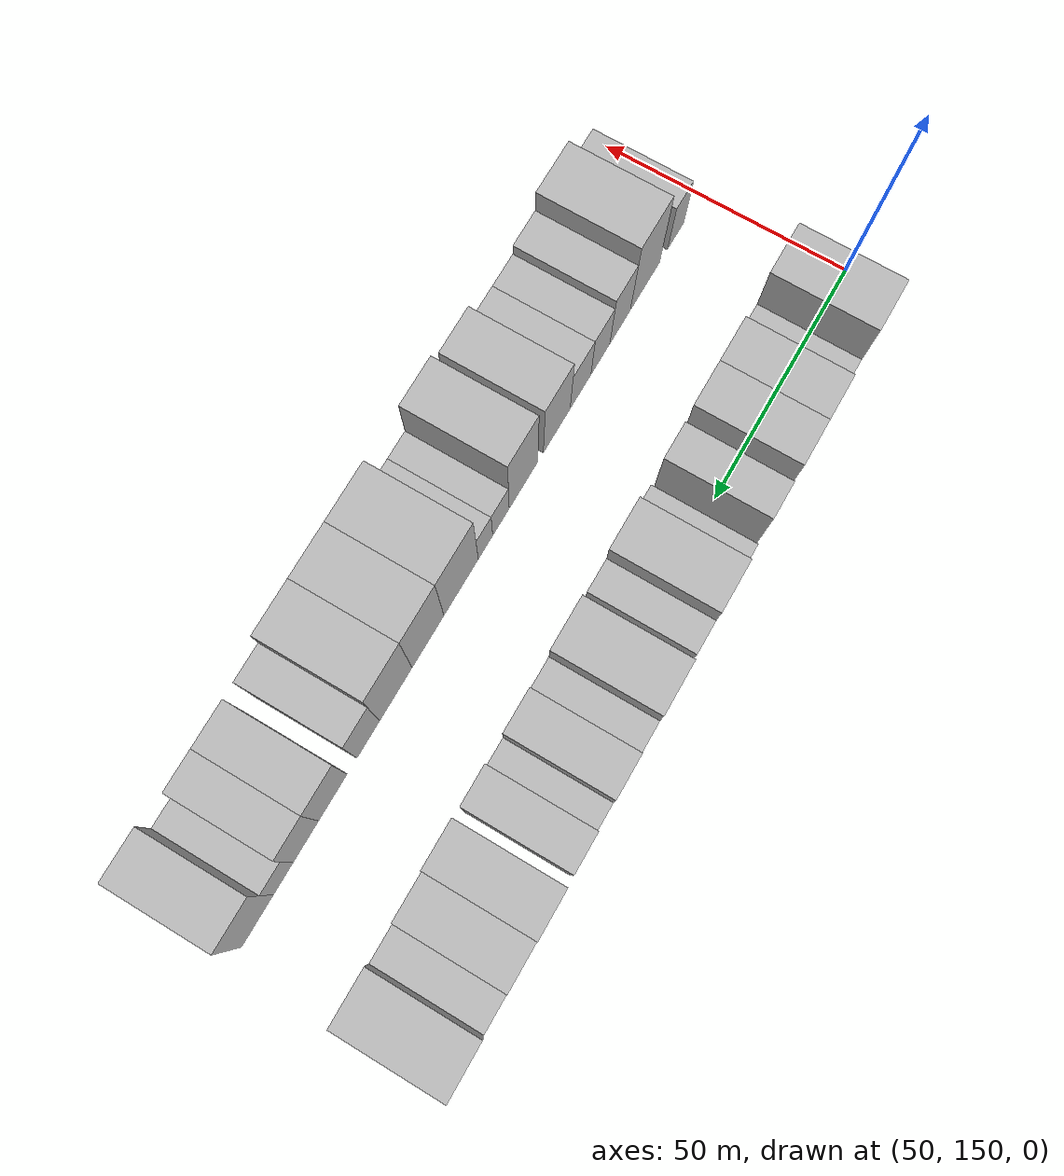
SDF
<sdf version="1.6">
 <world name="default">
  <model name="building_49">
   <static>1</static>
   <pose>50.0000 164.7333 0 0.000000 0.000000 0.000000</pose>
   <link name="link">
    <pose>0 0 12.00 0 0 0</pose>
    <collision name="collision"><geometry><box><size>20.0000 10.2480 24.0000</size></box></geometry></collision>
    <visual name="visual">
     <cast_shadows>0</cast_shadows>
     <geometry><box><size>20.0000 10.2480 24.0000</size></box></geometry>
     <material>
      <script>
       <uri>model://HANNAS_wall/materials/scripts</uri>
       <uri>model://HANNAS_wall/materials/textures</uri>
       <name>vrc/HANNAS_wall</name>
      </script>
     </material>
    </visual>
   </link>
  </model>
  <model name="building_50">
   <static>1</static>
   <pose>50.0000 172.4840 0 0.000000 0.000000 0.000000</pose>
   <link name="link">
    <pose>0 0 6.00 0 0 0</pose>
    <collision name="collision"><geometry><box><size>20.0000 5.2534 12.0000</size></box></geometry></collision>
    <visual name="visual">
     <cast_shadows>0</cast_shadows>
     <geometry><box><size>20.0000 5.2534 12.0000</size></box></geometry>
     <material>
      <script>
       <uri>model://HANNAS_wall/materials/scripts</uri>
       <uri>model://HANNAS_wall/materials/textures</uri>
       <name>vrc/HANNAS_wall</name>
      </script>
     </material>
    </visual>
   </link>
  </model>
  <model name="building_51">
   <static>1</static>
   <pose>50.0000 181.5382 0 0.000000 0.000000 0.000000</pose>
   <link name="link">
    <pose>0 0 10.50 0 0 0</pose>
    <collision name="collision"><geometry><box><size>20.0000 8.8549 21.0000</size></box></geometry></collision>
    <visual name="visual">
     <cast_shadows>0</cast_shadows>
     <geometry><box><size>20.0000 8.8549 21.0000</size></box></geometry>
     <material>
      <script>
       <uri>model://HANNAS_wall/materials/scripts</uri>
       <uri>model://HANNAS_wall/materials/textures</uri>
       <name>vrc/HANNAS_wall</name>
      </script>
     </material>
    </visual>
   </link>
  </model>
  <model name="building_52">
   <static>1</static>
   <pose>50.0000 190.4332 0 0.000000 0.000000 0.000000</pose>
   <link name="link">
    <pose>0 0 10.50 0 0 0</pose>
    <collision name="collision"><geometry><box><size>20.0000 8.9350 21.0000</size></box></geometry></collision>
    <visual name="visual">
     <cast_shadows>0</cast_shadows>
     <geometry><box><size>20.0000 8.9350 21.0000</size></box></geometry>
     <material>
      <script>
       <uri>model://HANNAS_wall/materials/scripts</uri>
       <uri>model://HANNAS_wall/materials/textures</uri>
       <name>vrc/HANNAS_wall</name>
      </script>
     </material>
    </visual>
   </link>
  </model>
  <model name="building_53">
   <static>1</static>
   <pose>50.0000 200.5397 0 0.000000 0.000000 0.000000</pose>
   <link name="link">
    <pose>0 0 9.00 0 0 0</pose>
    <collision name="collision"><geometry><box><size>20.0000 7.2780 18.0000</size></box></geometry></collision>
    <visual name="visual">
     <cast_shadows>0</cast_shadows>
     <geometry><box><size>20.0000 7.2780 18.0000</size></box></geometry>
     <material>
      <script>
       <uri>model://HANNAS_wall/materials/scripts</uri>
       <uri>model://HANNAS_wall/materials/textures</uri>
       <name>vrc/HANNAS_wall</name>
      </script>
     </material>
    </visual>
   </link>
  </model>
  <model name="building_54">
   <static>1</static>
   <pose>50.0000 209.8873 0 0.000000 0.000000 0.000000</pose>
   <link name="link">
    <pose>0 0 6.00 0 0 0</pose>
    <collision name="collision"><geometry><box><size>20.0000 5.4173 12.0000</size></box></geometry></collision>
    <visual name="visual">
     <cast_shadows>0</cast_shadows>
     <geometry><box><size>20.0000 5.4173 12.0000</size></box></geometry>
     <material>
      <script>
       <uri>model://HANNAS_wall/materials/scripts</uri>
       <uri>model://HANNAS_wall/materials/textures</uri>
       <name>vrc/HANNAS_wall</name>
      </script>
     </material>
    </visual>
   </link>
  </model>
  <model name="building_55">
   <static>1</static>
   <pose>50.0000 217.5736 0 0.000000 0.000000 0.000000</pose>
   <link name="link">
    <pose>0 0 10.50 0 0 0</pose>
    <collision name="collision"><geometry><box><size>20.0000 9.9553 21.0000</size></box></geometry></collision>
    <visual name="visual">
     <cast_shadows>0</cast_shadows>
     <geometry><box><size>20.0000 9.9553 21.0000</size></box></geometry>
     <material>
      <script>
       <uri>model://HANNAS_wall/materials/scripts</uri>
       <uri>model://HANNAS_wall/materials/textures</uri>
       <name>vrc/HANNAS_wall</name>
      </script>
     </material>
    </visual>
   </link>
  </model>
  <model name="building_56">
   <static>1</static>
   <pose>50.0000 225.7262 0 0.000000 0.000000 0.000000</pose>
   <link name="link">
    <pose>0 0 7.50 0 0 0</pose>
    <collision name="collision"><geometry><box><size>20.0000 6.3499 15.0000</size></box></geometry></collision>
    <visual name="visual">
     <cast_shadows>0</cast_shadows>
     <geometry><box><size>20.0000 6.3499 15.0000</size></box></geometry>
     <material>
      <script>
       <uri>model://HANNAS_wall/materials/scripts</uri>
       <uri>model://HANNAS_wall/materials/textures</uri>
       <name>vrc/HANNAS_wall</name>
      </script>
     </material>
    </visual>
   </link>
  </model>
  <model name="building_57">
   <static>1</static>
   <pose>50.0000 235.9621 0 0.000000 0.000000 0.000000</pose>
   <link name="link">
    <pose>0 0 10.50 0 0 0</pose>
    <collision name="collision"><geometry><box><size>20.0000 10.1217 21.0000</size></box></geometry></collision>
    <visual name="visual">
     <cast_shadows>0</cast_shadows>
     <geometry><box><size>20.0000 10.1217 21.0000</size></box></geometry>
     <material>
      <script>
       <uri>model://HANNAS_wall/materials/scripts</uri>
       <uri>model://HANNAS_wall/materials/textures</uri>
       <name>vrc/HANNAS_wall</name>
      </script>
     </material>
    </visual>
   </link>
  </model>
  <model name="building_58">
   <static>1</static>
   <pose>50.0000 244.0430 0 0.000000 0.000000 0.000000</pose>
   <link name="link">
    <pose>0 0 7.50 0 0 0</pose>
    <collision name="collision"><geometry><box><size>20.0000 6.0402 15.0000</size></box></geometry></collision>
    <visual name="visual">
     <cast_shadows>0</cast_shadows>
     <geometry><box><size>20.0000 6.0402 15.0000</size></box></geometry>
     <material>
      <script>
       <uri>model://HANNAS_wall/materials/scripts</uri>
       <uri>model://HANNAS_wall/materials/textures</uri>
       <name>vrc/HANNAS_wall</name>
      </script>
     </material>
    </visual>
   </link>
  </model>
  <model name="building_59">
   <static>1</static>
   <pose>50.0000 251.2206 0 0.000000 0.000000 0.000000</pose>
   <link name="link">
    <pose>0 0 9.00 0 0 0</pose>
    <collision name="collision"><geometry><box><size>20.0000 8.3151 18.0000</size></box></geometry></collision>
    <visual name="visual">
     <cast_shadows>0</cast_shadows>
     <geometry><box><size>20.0000 8.3151 18.0000</size></box></geometry>
     <material>
      <script>
       <uri>model://HANNAS_wall/materials/scripts</uri>
       <uri>model://HANNAS_wall/materials/textures</uri>
       <name>vrc/HANNAS_wall</name>
      </script>
     </material>
    </visual>
   </link>
  </model>
  <model name="building_60">
   <static>1</static>
   <pose>50.0000 258.0000 0 0.000000 0.000000 0.000000</pose>
   <link name="link">
    <pose>0 0 6.00 0 0 0</pose>
    <collision name="collision"><geometry><box><size>20.0000 5.2437 12.0000</size></box></geometry></collision>
    <visual name="visual">
     <cast_shadows>0</cast_shadows>
     <geometry><box><size>20.0000 5.2437 12.0000</size></box></geometry>
     <material>
      <script>
       <uri>model://HANNAS_wall/materials/scripts</uri>
       <uri>model://HANNAS_wall/materials/textures</uri>
       <name>vrc/HANNAS_wall</name>
      </script>
     </material>
    </visual>
   </link>
  </model>
  <model name="building_61">
   <static>1</static>
   <pose>50.0000 264.3909 0 0.000000 0.000000 0.000000</pose>
   <link name="link">
    <pose>0 0 9.00 0 0 0</pose>
    <collision name="collision"><geometry><box><size>20.0000 7.5382 18.0000</size></box></geometry></collision>
    <visual name="visual">
     <cast_shadows>0</cast_shadows>
     <geometry><box><size>20.0000 7.5382 18.0000</size></box></geometry>
     <material>
      <script>
       <uri>model://HANNAS_wall/materials/scripts</uri>
       <uri>model://HANNAS_wall/materials/textures</uri>
       <name>vrc/HANNAS_wall</name>
      </script>
     </material>
    </visual>
   </link>
  </model>
  <model name="building_62">
   <static>1</static>
   <pose>50.0000 274.6211 0 0.000000 0.000000 0.000000</pose>
   <link name="link">
    <pose>0 0 10.50 0 0 0</pose>
    <collision name="collision"><geometry><box><size>20.0000 8.9221 21.0000</size></box></geometry></collision>
    <visual name="visual">
     <cast_shadows>0</cast_shadows>
     <geometry><box><size>20.0000 8.9221 21.0000</size></box></geometry>
     <material>
      <script>
       <uri>model://HANNAS_wall/materials/scripts</uri>
       <uri>model://HANNAS_wall/materials/textures</uri>
       <name>vrc/HANNAS_wall</name>
      </script>
     </material>
    </visual>
   </link>
  </model>
  <model name="building_63">
   <static>1</static>
   <pose>50.0000 283.4762 0 0.000000 0.000000 0.000000</pose>
   <link name="link">
    <pose>0 0 9.00 0 0 0</pose>
    <collision name="collision"><geometry><box><size>20.0000 8.7880 18.0000</size></box></geometry></collision>
    <visual name="visual">
     <cast_shadows>0</cast_shadows>
     <geometry><box><size>20.0000 8.7880 18.0000</size></box></geometry>
     <material>
      <script>
       <uri>model://HANNAS_wall/materials/scripts</uri>
       <uri>model://HANNAS_wall/materials/textures</uri>
       <name>vrc/HANNAS_wall</name>
      </script>
     </material>
    </visual>
   </link>
  </model>
  <model name="building_64">
   <static>1</static>
   <pose>50.0000 291.2876 0 0.000000 0.000000 0.000000</pose>
   <link name="link">
    <pose>0 0 7.50 0 0 0</pose>
    <collision name="collision"><geometry><box><size>20.0000 6.8347 15.0000</size></box></geometry></collision>
    <visual name="visual">
     <cast_shadows>0</cast_shadows>
     <geometry><box><size>20.0000 6.8347 15.0000</size></box></geometry>
     <material>
      <script>
       <uri>model://HANNAS_wall/materials/scripts</uri>
       <uri>model://HANNAS_wall/materials/textures</uri>
       <name>vrc/HANNAS_wall</name>
      </script>
     </material>
    </visual>
   </link>
  </model>
  <model name="building_65">
   <static>1</static>
   <pose>50.0000 299.7510 0 0.000000 0.000000 0.000000</pose>
   <link name="link">
    <pose>0 0 10.50 0 0 0</pose>
    <collision name="collision"><geometry><box><size>20.0000 10.0922 21.0000</size></box></geometry></collision>
    <visual name="visual">
     <cast_shadows>0</cast_shadows>
     <geometry><box><size>20.0000 10.0922 21.0000</size></box></geometry>
     <material>
      <script>
       <uri>model://HANNAS_wall/materials/scripts</uri>
       <uri>model://HANNAS_wall/materials/textures</uri>
       <name>vrc/HANNAS_wall</name>
      </script>
     </material>
    </visual>
   </link>
  </model>
  <model name="building_117">
   <static>1</static>
   <pose>90.0000 159.7035 0 0.000000 0.000000 0.000000</pose>
   <link name="link">
    <pose>0 0 7.50 0 0 0</pose>
    <collision name="collision"><geometry><box><size>20.0000 6.1051 15.0000</size></box></geometry></collision>
    <visual name="visual">
     <cast_shadows>0</cast_shadows>
     <geometry><box><size>20.0000 6.1051 15.0000</size></box></geometry>
     <material>
      <script>
       <uri>model://HANNAS_wall/materials/scripts</uri>
       <uri>model://HANNAS_wall/materials/textures</uri>
       <name>vrc/HANNAS_wall</name>
      </script>
     </material>
    </visual>
   </link>
  </model>
  <model name="building_118">
   <static>1</static>
   <pose>90.0000 171.2225 0 0.000000 0.000000 0.000000</pose>
   <link name="link">
    <pose>0 0 12.00 0 0 0</pose>
    <collision name="collision"><geometry><box><size>20.0000 10.9329 24.0000</size></box></geometry></collision>
    <visual name="visual">
     <cast_shadows>0</cast_shadows>
     <geometry><box><size>20.0000 10.9329 24.0000</size></box></geometry>
     <material>
      <script>
       <uri>model://HANNAS_wall/materials/scripts</uri>
       <uri>model://HANNAS_wall/materials/textures</uri>
       <name>vrc/HANNAS_wall</name>
      </script>
     </material>
    </visual>
   </link>
  </model>
  <model name="building_119">
   <static>1</static>
   <pose>90.0000 180.4531 0 0.000000 0.000000 0.000000</pose>
   <link name="link">
    <pose>0 0 9.00 0 0 0</pose>
    <collision name="collision"><geometry><box><size>20.0000 7.5284 18.0000</size></box></geometry></collision>
    <visual name="visual">
     <cast_shadows>0</cast_shadows>
     <geometry><box><size>20.0000 7.5284 18.0000</size></box></geometry>
     <material>
      <script>
       <uri>model://HANNAS_wall/materials/scripts</uri>
       <uri>model://HANNAS_wall/materials/textures</uri>
       <name>vrc/HANNAS_wall</name>
      </script>
     </material>
    </visual>
   </link>
  </model>
  <model name="building_120">
   <static>1</static>
   <pose>90.0000 187.6363 0 0.000000 0.000000 0.000000</pose>
   <link name="link">
    <pose>0 0 7.50 0 0 0</pose>
    <collision name="collision"><geometry><box><size>20.0000 6.8379 15.0000</size></box></geometry></collision>
    <visual name="visual">
     <cast_shadows>0</cast_shadows>
     <geometry><box><size>20.0000 6.8379 15.0000</size></box></geometry>
     <material>
      <script>
       <uri>model://HANNAS_wall/materials/scripts</uri>
       <uri>model://HANNAS_wall/materials/textures</uri>
       <name>vrc/HANNAS_wall</name>
      </script>
     </material>
    </visual>
   </link>
  </model>
  <model name="building_121">
   <static>1</static>
   <pose>90.0000 194.7743 0 0.000000 0.000000 0.000000</pose>
   <link name="link">
    <pose>0 0 7.50 0 0 0</pose>
    <collision name="collision"><geometry><box><size>20.0000 7.4381 15.0000</size></box></geometry></collision>
    <visual name="visual">
     <cast_shadows>0</cast_shadows>
     <geometry><box><size>20.0000 7.4381 15.0000</size></box></geometry>
     <material>
      <script>
       <uri>model://HANNAS_wall/materials/scripts</uri>
       <uri>model://HANNAS_wall/materials/textures</uri>
       <name>vrc/HANNAS_wall</name>
      </script>
     </material>
    </visual>
   </link>
  </model>
  <model name="building_122">
   <static>1</static>
   <pose>90.0000 203.2185 0 0.000000 0.000000 0.000000</pose>
   <link name="link">
    <pose>0 0 10.50 0 0 0</pose>
    <collision name="collision"><geometry><box><size>20.0000 9.4503 21.0000</size></box></geometry></collision>
    <visual name="visual">
     <cast_shadows>0</cast_shadows>
     <geometry><box><size>20.0000 9.4503 21.0000</size></box></geometry>
     <material>
      <script>
       <uri>model://HANNAS_wall/materials/scripts</uri>
       <uri>model://HANNAS_wall/materials/textures</uri>
       <name>vrc/HANNAS_wall</name>
      </script>
     </material>
    </visual>
   </link>
  </model>
  <model name="building_123">
   <static>1</static>
   <pose>90.0000 214.8540 0 0.000000 0.000000 0.000000</pose>
   <link name="link">
    <pose>0 0 12.00 0 0 0</pose>
    <collision name="collision"><geometry><box><size>20.0000 9.8207 24.0000</size></box></geometry></collision>
    <visual name="visual">
     <cast_shadows>0</cast_shadows>
     <geometry><box><size>20.0000 9.8207 24.0000</size></box></geometry>
     <material>
      <script>
       <uri>model://HANNAS_wall/materials/scripts</uri>
       <uri>model://HANNAS_wall/materials/textures</uri>
       <name>vrc/HANNAS_wall</name>
      </script>
     </material>
    </visual>
   </link>
  </model>
  <model name="building_124">
   <static>1</static>
   <pose>90.0000 222.5661 0 0.000000 0.000000 0.000000</pose>
   <link name="link">
    <pose>0 0 6.00 0 0 0</pose>
    <collision name="collision"><geometry><box><size>20.0000 5.6034 12.0000</size></box></geometry></collision>
    <visual name="visual">
     <cast_shadows>0</cast_shadows>
     <geometry><box><size>20.0000 5.6034 12.0000</size></box></geometry>
     <material>
      <script>
       <uri>model://HANNAS_wall/materials/scripts</uri>
       <uri>model://HANNAS_wall/materials/textures</uri>
       <name>vrc/HANNAS_wall</name>
      </script>
     </material>
    </visual>
   </link>
  </model>
  <model name="building_125">
   <static>1</static>
   <pose>90.0000 227.7988 0 0.000000 0.000000 0.000000</pose>
   <link name="link">
    <pose>0 0 6.00 0 0 0</pose>
    <collision name="collision"><geometry><box><size>20.0000 4.8621 12.0000</size></box></geometry></collision>
    <visual name="visual">
     <cast_shadows>0</cast_shadows>
     <geometry><box><size>20.0000 4.8621 12.0000</size></box></geometry>
     <material>
      <script>
       <uri>model://HANNAS_wall/materials/scripts</uri>
       <uri>model://HANNAS_wall/materials/textures</uri>
       <name>vrc/HANNAS_wall</name>
      </script>
     </material>
    </visual>
   </link>
  </model>
  <model name="building_126">
   <static>1</static>
   <pose>90.0000 235.9487 0 0.000000 0.000000 0.000000</pose>
   <link name="link">
    <pose>0 0 12.00 0 0 0</pose>
    <collision name="collision"><geometry><box><size>20.0000 11.4376 24.0000</size></box></geometry></collision>
    <visual name="visual">
     <cast_shadows>0</cast_shadows>
     <geometry><box><size>20.0000 11.4376 24.0000</size></box></geometry>
     <material>
      <script>
       <uri>model://HANNAS_wall/materials/scripts</uri>
       <uri>model://HANNAS_wall/materials/textures</uri>
       <name>vrc/HANNAS_wall</name>
      </script>
     </material>
    </visual>
   </link>
  </model>
  <model name="building_127">
   <static>1</static>
   <pose>90.0000 246.8679 0 0.000000 0.000000 0.000000</pose>
   <link name="link">
    <pose>0 0 12.00 0 0 0</pose>
    <collision name="collision"><geometry><box><size>20.0000 10.4008 24.0000</size></box></geometry></collision>
    <visual name="visual">
     <cast_shadows>0</cast_shadows>
     <geometry><box><size>20.0000 10.4008 24.0000</size></box></geometry>
     <material>
      <script>
       <uri>model://HANNAS_wall/materials/scripts</uri>
       <uri>model://HANNAS_wall/materials/textures</uri>
       <name>vrc/HANNAS_wall</name>
      </script>
     </material>
    </visual>
   </link>
  </model>
  <model name="building_128">
   <static>1</static>
   <pose>90.0000 257.2572 0 0.000000 0.000000 0.000000</pose>
   <link name="link">
    <pose>0 0 12.00 0 0 0</pose>
    <collision name="collision"><geometry><box><size>20.0000 10.3778 24.0000</size></box></geometry></collision>
    <visual name="visual">
     <cast_shadows>0</cast_shadows>
     <geometry><box><size>20.0000 10.3778 24.0000</size></box></geometry>
     <material>
      <script>
       <uri>model://HANNAS_wall/materials/scripts</uri>
       <uri>model://HANNAS_wall/materials/textures</uri>
       <name>vrc/HANNAS_wall</name>
      </script>
     </material>
    </visual>
   </link>
  </model>
  <model name="building_129">
   <static>1</static>
   <pose>90.0000 266.0530 0 0.000000 0.000000 0.000000</pose>
   <link name="link">
    <pose>0 0 9.00 0 0 0</pose>
    <collision name="collision"><geometry><box><size>20.0000 7.2137 18.0000</size></box></geometry></collision>
    <visual name="visual">
     <cast_shadows>0</cast_shadows>
     <geometry><box><size>20.0000 7.2137 18.0000</size></box></geometry>
     <material>
      <script>
       <uri>model://HANNAS_wall/materials/scripts</uri>
       <uri>model://HANNAS_wall/materials/textures</uri>
       <name>vrc/HANNAS_wall</name>
      </script>
     </material>
    </visual>
   </link>
  </model>
  <model name="building_130">
   <static>1</static>
   <pose>90.0000 277.0667 0 0.000000 0.000000 0.000000</pose>
   <link name="link">
    <pose>0 0 9.00 0 0 0</pose>
    <collision name="collision"><geometry><box><size>20.0000 8.8136 18.0000</size></box></geometry></collision>
    <visual name="visual">
     <cast_shadows>0</cast_shadows>
     <geometry><box><size>20.0000 8.8136 18.0000</size></box></geometry>
     <material>
      <script>
       <uri>model://HANNAS_wall/materials/scripts</uri>
       <uri>model://HANNAS_wall/materials/textures</uri>
       <name>vrc/HANNAS_wall</name>
      </script>
     </material>
    </visual>
   </link>
  </model>
  <model name="building_131">
   <static>1</static>
   <pose>90.0000 285.3324 0 0.000000 0.000000 0.000000</pose>
   <link name="link">
    <pose>0 0 9.00 0 0 0</pose>
    <collision name="collision"><geometry><box><size>20.0000 7.7179 18.0000</size></box></geometry></collision>
    <visual name="visual">
     <cast_shadows>0</cast_shadows>
     <geometry><box><size>20.0000 7.7179 18.0000</size></box></geometry>
     <material>
      <script>
       <uri>model://HANNAS_wall/materials/scripts</uri>
       <uri>model://HANNAS_wall/materials/textures</uri>
       <name>vrc/HANNAS_wall</name>
      </script>
     </material>
    </visual>
   </link>
  </model>
  <model name="building_132">
   <static>1</static>
   <pose>90.0000 292.1378 0 0.000000 0.000000 0.000000</pose>
   <link name="link">
    <pose>0 0 6.00 0 0 0</pose>
    <collision name="collision"><geometry><box><size>20.0000 5.8928 12.0000</size></box></geometry></collision>
    <visual name="visual">
     <cast_shadows>0</cast_shadows>
     <geometry><box><size>20.0000 5.8928 12.0000</size></box></geometry>
     <material>
      <script>
       <uri>model://HANNAS_wall/materials/scripts</uri>
       <uri>model://HANNAS_wall/materials/textures</uri>
       <name>vrc/HANNAS_wall</name>
      </script>
     </material>
    </visual>
   </link>
  </model>
  <model name="building_133">
   <static>1</static>
   <pose>90.0000 299.8376 0 0.000000 0.000000 0.000000</pose>
   <link name="link">
    <pose>0 0 10.50 0 0 0</pose>
    <collision name="collision"><geometry><box><size>20.0000 9.5069 21.0000</size></box></geometry></collision>
    <visual name="visual">
     <cast_shadows>0</cast_shadows>
     <geometry><box><size>20.0000 9.5069 21.0000</size></box></geometry>
     <material>
      <script>
       <uri>model://HANNAS_wall/materials/scripts</uri>
       <uri>model://HANNAS_wall/materials/textures</uri>
       <name>vrc/HANNAS_wall</name>
      </script>
     </material>
    </visual>
   </link>
  </model>
 </world>
</sdf>
